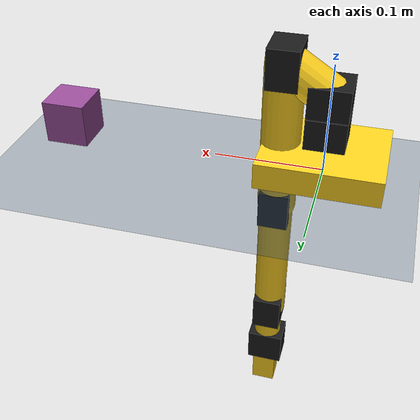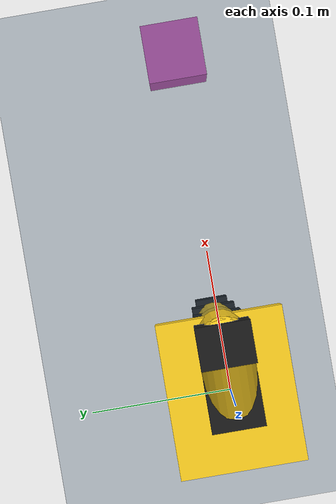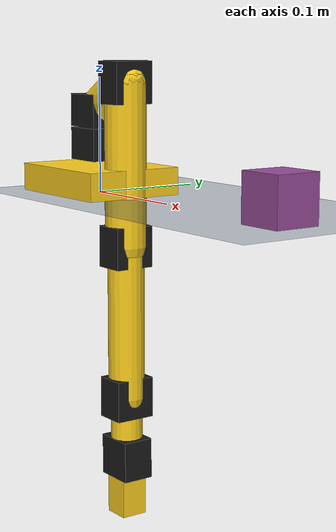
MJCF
<mujoco model="SO101PickScene">
  <include file="so101.xml"/>

  <option timestep=".002" noslip_iterations="5" noslip_tolerance="0"/>
  <statistic center="0.2 0 0.2" extent=".7"/>

  <visual>
    <headlight diffuse=".4 .4 .4" ambient=".5 .5 .5"/>
    <global azimuth="160" elevation="-20" offheight="128" offwidth="128"/>
    <quality offsamples="8"/>
  </visual>

  <asset>
    <texture type="skybox" builtin="gradient" rgb1=".3 .5 .7" rgb2="0 0 0" width="32" height="512"/>
    <texture name="grid" type="2d" builtin="checker" width="512" height="512" rgb1=".1 .2 .3" rgb2=".2 .3 .4"/>
    <material name="grid" texture="grid" texrepeat="2 2" texuniform="true" reflectance="0"/>
  </asset>

  <worldbody>
    <camera name="front" pos="0.75 0.0 0.45" quat="0.6532815 0.2705981 0.2705981 0.6532815" fovy="45"/>
    <light pos="0 0 3" dir="0 0 -1" diffuse="1 1 1" specular=".3 .3 .3"/>
    <light pos="0 -.5 .4" mode="targetbodycom" target="block" diffuse=".8 .8 .8" specular=".3 .3 .3"/>
    <geom name="floor" size="3 3 0.01" type="plane" material="grid"/>
    <body name="block" pos="0.24 0 .02">
      <freejoint name="block"/>
      <geom name="block" type="box" size=".02 .02 .02" mass="0.05" rgba=".6 .3 .6 1"/>
    </body>
  </worldbody>

  <sensor>
    <framepos name="block_pos" objtype="geom" objname="block"/>
    <framequat name="block_quat" objtype="geom" objname="block"/>
  </sensor>
</mujoco>

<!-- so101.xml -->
<mujoco model="so101">
  <compiler angle="radian" autolimits="true"/>

  <default>
    <default class="so101">
      <joint damping="0.60" frictionloss="0.052" armature="0.028" limited="true"/>
      <position kp="120" kv="3" forcerange="-3.35 3.35"/>
      <geom contype="1" conaffinity="1" density="650" friction="0.8 0.1 0.1"/>
      <site size="0.006" rgba="0.1 0.7 1 1" group="4"/>
      <default class="so101/visual">
        <geom contype="0" conaffinity="0" group="2" rgba="1 0.82 0.12 1"/>
      </default>
      <default class="so101/collision">
        <geom group="3" rgba="1 0.82 0.12 0.35"/>
      </default>
      <default class="so101/servo">
        <geom type="box" size="0.018 0.018 0.014" rgba="0.1 0.1 0.1 1"/>
      </default>
    </default>
  </default>

  <worldbody>
    <body name="so101_base" pos="0 0 0" childclass="so101">
      <geom name="so101_base_plate" type="box" size="0.055 0.045 0.012" pos="0 0 0.012" class="so101/visual"/>
      <geom name="so101_base_collision" type="box" size="0.055 0.045 0.012" pos="0 0 0.012" class="so101/collision"/>
      <geom name="so101_base_servo" pos="0 0 0.043" class="so101/servo"/>

      <body name="so101_shoulder" pos="0 0 0.072">
        <joint name="shoulder_pan" type="hinge" axis="0 0 1" range="-1.91986 1.91986"/>
        <geom name="so101_shoulder_servo" pos="0 0 0" class="so101/servo"/>
        <geom name="so101_shoulder_link" type="capsule" fromto="0 0 0 0.04 0 0.025" size="0.018" class="so101/visual"/>
        <geom name="so101_shoulder_link_collision" type="capsule" fromto="0 0 0 0.04 0 0.025" size="0.018" class="so101/collision"/>

        <body name="so101_upper_arm" pos="0.04 0 0.025" quat="0.7071068 0 0.7071068 0">
          <joint name="shoulder_lift" type="hinge" axis="0 0 1" range="-1.74533 1.74533"/>
          <geom name="so101_upper_servo" pos="0 0 0" class="so101/servo"/>
          <geom name="so101_upper_arm" type="capsule" fromto="0 0 0 0.14 0 0" size="0.018" class="so101/visual"/>
          <geom name="so101_upper_arm_collision" type="capsule" fromto="0 0 0 0.14 0 0" size="0.018" class="so101/collision"/>

          <body name="so101_lower_arm" pos="0.14 0 0">
            <joint name="elbow_flex" type="hinge" axis="0 0 1" range="-1.69 1.69"/>
            <geom name="so101_elbow_servo" pos="0 0 0" class="so101/servo"/>
            <geom name="so101_lower_arm" type="capsule" fromto="0 0 0 0.135 0 0" size="0.016" class="so101/visual"/>
            <geom name="so101_lower_arm_collision" type="capsule" fromto="0 0 0 0.135 0 0" size="0.016" class="so101/collision"/>

            <body name="so101_wrist" pos="0.135 0 0">
              <joint name="wrist_flex" type="hinge" axis="0 0 1" range="-1.65806 1.65806"/>
              <geom name="so101_wrist_servo" pos="0 0 0" class="so101/servo"/>
              <geom name="so101_wrist_link" type="capsule" fromto="0 0 0 0.055 0 0" size="0.014" class="so101/visual"/>
              <geom name="so101_wrist_link_collision" type="capsule" fromto="0 0 0 0.055 0 0" size="0.014" class="so101/collision"/>

              <body name="so101_gripper_roll" pos="0.055 0 0" quat="0.7071068 0.7071068 0 0">
                <joint name="wrist_roll" type="hinge" axis="1 0 0" range="-2.74385 2.84121"/>
                <geom name="so101_roll_servo" pos="0 0 0" class="so101/servo"/>
                <camera name="handcam_rgb" pos="-0.025 0 0.045" quat="0.5 -0.5 -0.5 0.5" fovy="70"/>

                <body name="so101_gripper" pos="0.035 0 0">
                  <joint name="gripper" type="hinge" axis="0 0 1" range="-0.17453 1.74533"/>
                  <geom name="so101_gripper_palm" type="box" size="0.018 0.012 0.012" pos="0 0 0" class="so101/visual"/>
                  <geom name="so101_gripper_palm_collision" type="box" size="0.018 0.012 0.012" pos="0 0 0" class="so101/collision"/>
                  <geom name="so101_fixed_finger" type="box" size="0.008 0.006 0.035" pos="0.026 -0.018 0" class="so101/collision"/>
                  <geom name="so101_moving_finger" type="box" size="0.008 0.006 0.035" pos="0.026 0.018 0" class="so101/collision"/>
                  <site name="pinch" pos="0.035 0 0"/>
                </body>
              </body>
            </body>
          </body>
        </body>
      </body>
    </body>
  </worldbody>

  <actuator>
    <position name="shoulder_pan" joint="shoulder_pan" ctrlrange="-1.91986 1.91986"/>
    <position name="shoulder_lift" joint="shoulder_lift" ctrlrange="-1.74533 1.74533"/>
    <position name="elbow_flex" joint="elbow_flex" ctrlrange="-1.69 1.69"/>
    <position name="wrist_flex" joint="wrist_flex" ctrlrange="-1.65806 1.65806"/>
    <position name="wrist_roll" joint="wrist_roll" ctrlrange="-2.74385 2.84121"/>
    <position name="gripper" joint="gripper" ctrlrange="-0.17453 1.74533"/>
  </actuator>

  <sensor>
    <framepos name="so101/pinch_pos" objtype="site" objname="pinch"/>
    <framequat name="so101/pinch_quat" objtype="site" objname="pinch"/>
  </sensor>
</mujoco>
